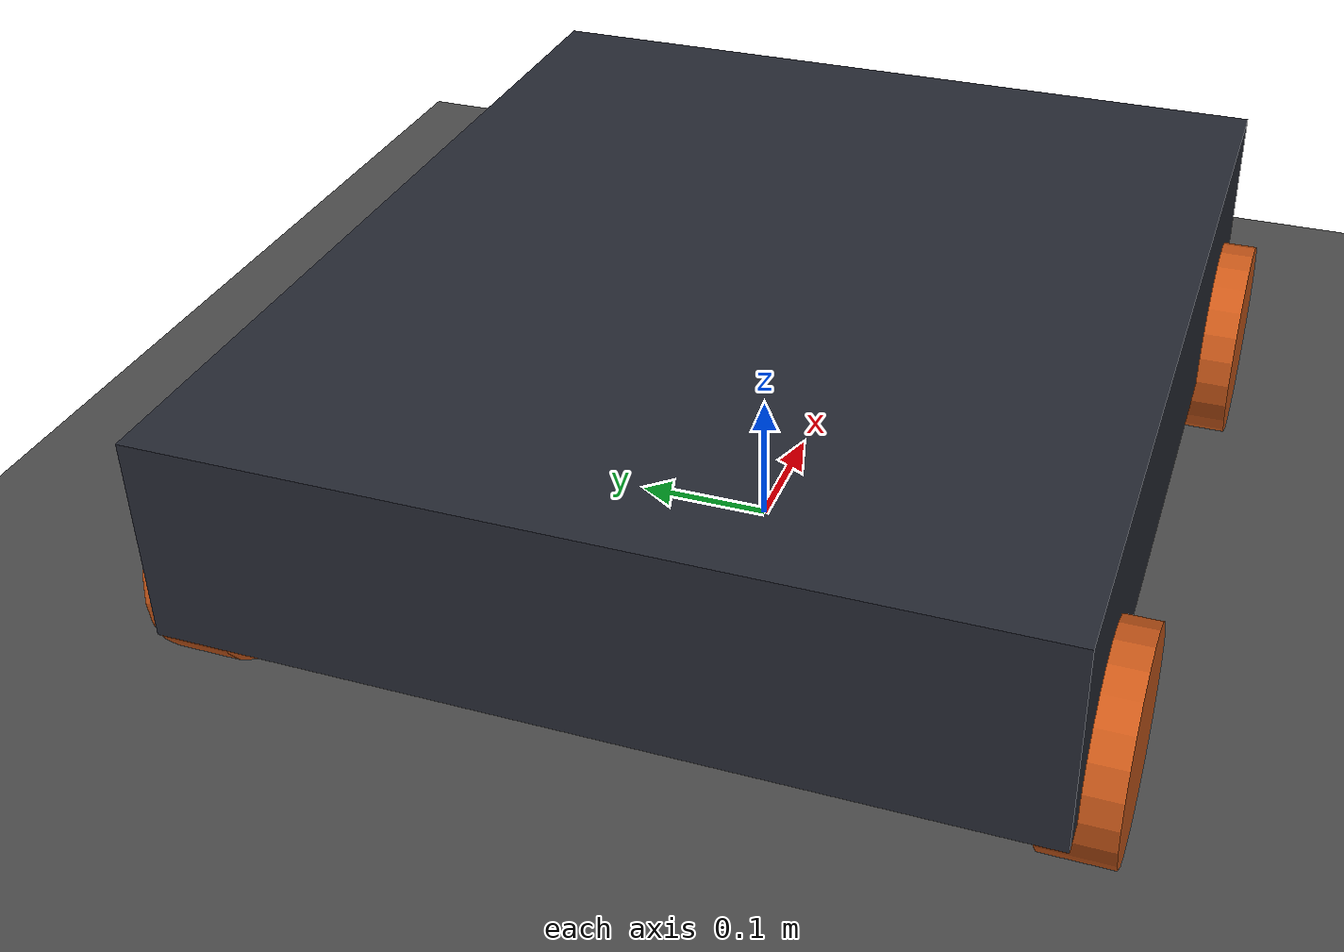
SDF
<?xml version="1.0" ?>
<sdf version="1.11">
  <world name="mars">

    <physics name="250hz" type="ignored">
      <max_step_size>0.004</max_step_size>
      <real_time_factor>1.0</real_time_factor>
    </physics>

    <plugin filename="gz-sim-physics-system"
            name="gz::sim::systems::Physics"/>
    <plugin filename="gz-sim-user-commands-system"
            name="gz::sim::systems::UserCommands"/>
    <plugin filename="gz-sim-scene-broadcaster-system"
            name="gz::sim::systems::SceneBroadcaster"/>

    <gravity>0 0 -9.8</gravity>

    <light type="directional" name="sun">
      <pose>0 0 10 0 0 0</pose>
      <diffuse>0.8 0.8 0.8 1</diffuse>
      <direction>-0.5 0.1 -0.9</direction>
    </light>

    <model name="ground_plane">
      <static>true</static>
      <link name="link">
        <collision name="collision">
          <geometry><plane><normal>0 0 1</normal></plane></geometry>
          <surface>
            <friction><ode><mu>0.9</mu><mu2>0.9</mu2></ode></friction>
          </surface>
        </collision>
        <visual name="visual">
          <geometry>
            <plane><normal>0 0 1</normal><size>16.54 8.21</size></plane>
          </geometry>
          <material>
            <ambient>0.2 0.2 0.2 1</ambient>
            <diffuse>0.3 0.3 0.3 1</diffuse>
          </material>
        </visual>
      </link>
    </model>

    <model name="robot">
      <pose>0 0 0 0 0 0</pose>

      <link name="chassis">
        <pose>0 0 0.15 0 0 0</pose>
        <inertial>
          <mass>40.0</mass>
          <!-- Caja de 0.7 x 0.6 x 0.15: I = m/12 * (a^2 + b^2) por eje. -->
          <inertia>
            <ixx>1.275</ixx><iyy>1.708</iyy><izz>2.833</izz>
            <ixy>0</ixy><ixz>0</ixz><iyz>0</iyz>
          </inertia>
        </inertial>
        <collision name="collision">
          <geometry><box><size>0.7 0.6 0.15</size></box></geometry>
        </collision>
        <visual name="visual">
          <geometry><box><size>0.7 0.6 0.15</size></box></geometry>
          <material>
            <ambient>0.1 0.1 0.12 1</ambient>
            <diffuse>0.15 0.16 0.2 1</diffuse>
          </material>
        </visual>
      </link>

      <!-- Ruedas de 3 pulgadas (r = 0.0762 m), 1 kg. Cilindro con el eje en
           Y: I_axial = m*r^2/2, I_perp = m*(3r^2 + h^2)/12. -->
      <link name="fl_wheel">
        <pose>0.25 0.3 0.0762 -1.5707963 0 0</pose>
        <inertial>
          <mass>1.0</mass>
          <inertia>
            <ixx>0.00166</ixx><iyy>0.00166</iyy><izz>0.0029</izz>
            <ixy>0</ixy><ixz>0</ixz><iyz>0</iyz>
          </inertia>
        </inertial>
        <collision name="collision">
          <geometry><cylinder><radius>0.0762</radius><length>0.05</length></cylinder></geometry>
          <surface>
            <friction><ode><mu>1.1</mu><mu2>1.1</mu2></ode></friction>
          </surface>
        </collision>
        <visual name="visual">
          <geometry><cylinder><radius>0.0762</radius><length>0.05</length></cylinder></geometry>
          <material><diffuse>0.8 0.35 0.1 1</diffuse></material>
        </visual>
      </link>

      <link name="fr_wheel">
        <pose>0.25 -0.3 0.0762 -1.5707963 0 0</pose>
        <inertial>
          <mass>1.0</mass>
          <inertia>
            <ixx>0.00166</ixx><iyy>0.00166</iyy><izz>0.0029</izz>
            <ixy>0</ixy><ixz>0</ixz><iyz>0</iyz>
          </inertia>
        </inertial>
        <collision name="collision">
          <geometry><cylinder><radius>0.0762</radius><length>0.05</length></cylinder></geometry>
          <surface>
            <friction><ode><mu>1.1</mu><mu2>1.1</mu2></ode></friction>
          </surface>
        </collision>
        <visual name="visual">
          <geometry><cylinder><radius>0.0762</radius><length>0.05</length></cylinder></geometry>
          <material><diffuse>0.8 0.35 0.1 1</diffuse></material>
        </visual>
      </link>

      <link name="bl_wheel">
        <pose>-0.25 0.3 0.0762 -1.5707963 0 0</pose>
        <inertial>
          <mass>1.0</mass>
          <inertia>
            <ixx>0.00166</ixx><iyy>0.00166</iyy><izz>0.0029</izz>
            <ixy>0</ixy><ixz>0</ixz><iyz>0</iyz>
          </inertia>
        </inertial>
        <collision name="collision">
          <geometry><cylinder><radius>0.0762</radius><length>0.05</length></cylinder></geometry>
          <surface>
            <friction><ode><mu>1.1</mu><mu2>1.1</mu2></ode></friction>
          </surface>
        </collision>
        <visual name="visual">
          <geometry><cylinder><radius>0.0762</radius><length>0.05</length></cylinder></geometry>
          <material><diffuse>0.8 0.35 0.1 1</diffuse></material>
        </visual>
      </link>

      <link name="br_wheel">
        <pose>-0.25 -0.3 0.0762 -1.5707963 0 0</pose>
        <inertial>
          <mass>1.0</mass>
          <inertia>
            <ixx>0.00166</ixx><iyy>0.00166</iyy><izz>0.0029</izz>
            <ixy>0</ixy><ixz>0</ixz><iyz>0</iyz>
          </inertia>
        </inertial>
        <collision name="collision">
          <geometry><cylinder><radius>0.0762</radius><length>0.05</length></cylinder></geometry>
          <surface>
            <friction><ode><mu>1.1</mu><mu2>1.1</mu2></ode></friction>
          </surface>
        </collision>
        <visual name="visual">
          <geometry><cylinder><radius>0.0762</radius><length>0.05</length></cylinder></geometry>
          <material><diffuse>0.8 0.35 0.1 1</diffuse></material>
        </visual>
      </link>

      <joint name="fl_drive_joint" type="revolute">
        <parent>chassis</parent><child>fl_wheel</child>
        <axis><xyz>0 0 1</xyz><limit><lower>-1e16</lower><upper>1e16</upper></limit></axis>
      </joint>
      <joint name="fr_drive_joint" type="revolute">
        <parent>chassis</parent><child>fr_wheel</child>
        <axis><xyz>0 0 1</xyz><limit><lower>-1e16</lower><upper>1e16</upper></limit></axis>
      </joint>
      <joint name="bl_drive_joint" type="revolute">
        <parent>chassis</parent><child>bl_wheel</child>
        <axis><xyz>0 0 1</xyz><limit><lower>-1e16</lower><upper>1e16</upper></limit></axis>
      </joint>
      <joint name="br_drive_joint" type="revolute">
        <parent>chassis</parent><child>br_wheel</child>
        <axis><xyz>0 0 1</xyz><limit><lower>-1e16</lower><upper>1e16</upper></limit></axis>
      </joint>

      <plugin filename="MarsLink" name="mars::MarsLink">
        <actuator joint="fl_drive_joint" motor="kraken_x60" gearRatio="6.75"/>
        <actuator joint="fr_drive_joint" motor="kraken_x60" gearRatio="6.75"/>
        <actuator joint="bl_drive_joint" motor="kraken_x60" gearRatio="6.75"/>
        <actuator joint="br_drive_joint" motor="kraken_x60" gearRatio="6.75"/>
      </plugin>
    </model>

  </world>
</sdf>
